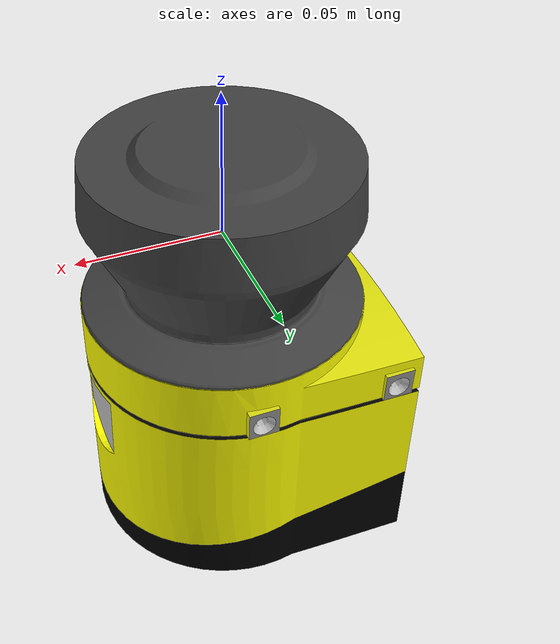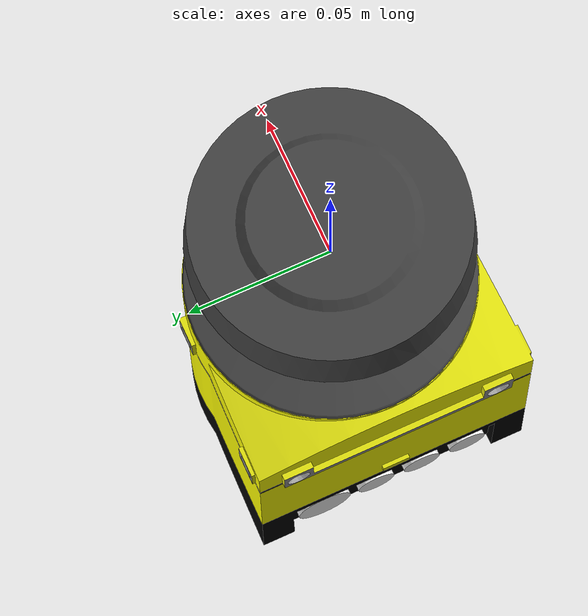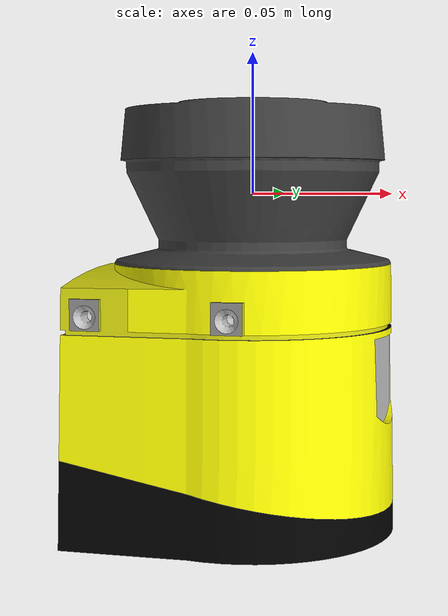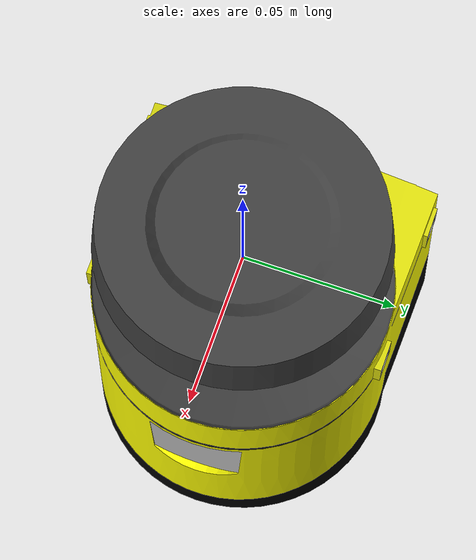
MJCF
<mujoco model="sick_s300">
  <compiler angle="radian" meshdir="meshes" autolimits="true"/>

  <asset>
    <material name="SICK-S300__m0_mat" rgba="0.251 0.251 0.251 1"/>
    <material name="SICK-S300__m1_mat" rgba="0.9569 0.9569 0.9569 1"/>
    <material name="SICK-S300__m2_mat" rgba="0.5451 0.549 0.549 1"/>
    <material name="SICK-S300__m3_mat" rgba="0 0 0 1"/>
    <material name="SICK-S300__m4_mat" rgba="0.8667 0.8667 0.051 1"/>
    <material name="SICK-S300__m5_mat" rgba="1 1 0 1"/>
    <material name="SICK-S300__m6_mat" rgba="0.749 0.749 0.749 1"/>
    <mesh name="SICK-S300__m0" file="SICK-S300__m0.obj"/>
    <mesh name="SICK-S300__m1" file="SICK-S300__m1.obj"/>
    <mesh name="SICK-S300__m2" file="SICK-S300__m2.obj"/>
    <mesh name="SICK-S300__m3" file="SICK-S300__m3.obj"/>
    <mesh name="SICK-S300__m4" file="SICK-S300__m4.obj"/>
    <mesh name="SICK-S300__m5" file="SICK-S300__m5.obj"/>
    <mesh name="SICK-S300__m6" file="SICK-S300__m6.obj"/>
    <mesh name="sick_s300_collision_body" file="sick_s300_collision_body.obj"/>
    <mesh name="sick_s300_collision_head" file="sick_s300_collision_head.obj"/>
  </asset>

  <worldbody>
    <body name="mount">
      <inertial pos="0 0 0" mass="1.2" diaginertia="0.11042056 0.11042056 0.11042056"/>
      <geom name="sick_s300_visual_0" type="mesh" mesh="SICK-S300__m0" material="SICK-S300__m0_mat" pos="0 0 -0.12" quat="0.000563312 -0.000562864 -0.706824957 0.707388045"
            contype="0" conaffinity="0"/>
      <geom name="sick_s300_visual_1" type="mesh" mesh="SICK-S300__m1" material="SICK-S300__m1_mat" pos="0 0 -0.12" quat="0.000563312 -0.000562864 -0.706824957 0.707388045"
            contype="0" conaffinity="0"/>
      <geom name="sick_s300_visual_2" type="mesh" mesh="SICK-S300__m2" material="SICK-S300__m2_mat" pos="0 0 -0.12" quat="0.000563312 -0.000562864 -0.706824957 0.707388045"
            contype="0" conaffinity="0"/>
      <geom name="sick_s300_visual_3" type="mesh" mesh="SICK-S300__m3" material="SICK-S300__m3_mat" pos="0 0 -0.12" quat="0.000563312 -0.000562864 -0.706824957 0.707388045"
            contype="0" conaffinity="0"/>
      <geom name="sick_s300_visual_4" type="mesh" mesh="SICK-S300__m4" material="SICK-S300__m4_mat" pos="0 0 -0.12" quat="0.000563312 -0.000562864 -0.706824957 0.707388045"
            contype="0" conaffinity="0"/>
      <geom name="sick_s300_visual_5" type="mesh" mesh="SICK-S300__m5" material="SICK-S300__m5_mat" pos="0 0 -0.12" quat="0.000563312 -0.000562864 -0.706824957 0.707388045"
            contype="0" conaffinity="0"/>
      <geom name="sick_s300_visual_6" type="mesh" mesh="SICK-S300__m6" material="SICK-S300__m6_mat" pos="0 0 -0.12" quat="0.000563312 -0.000562864 -0.706824957 0.707388045"
            contype="0" conaffinity="0"/>
      <!-- The vendor collides with the full mesh; these are the convex hulls of the converted housing's block and of its optics head. -->
      <geom name="sick_s300_collision_body" type="mesh" mesh="sick_s300_collision_body" group="3"/>
      <geom name="sick_s300_collision_head" type="mesh" mesh="sick_s300_collision_head" group="3"/>
      <!-- The data sheet's scan plane, 4.1 mm below the vendor scan frame (lidar_1_link), which is the mount itself.
           Keep in step with the manifest's `frames:` entry. -->
      <site name="scan" pos="0 0 -0.0041" size="0.005"/>
    </body>
  </worldbody>
</mujoco>
